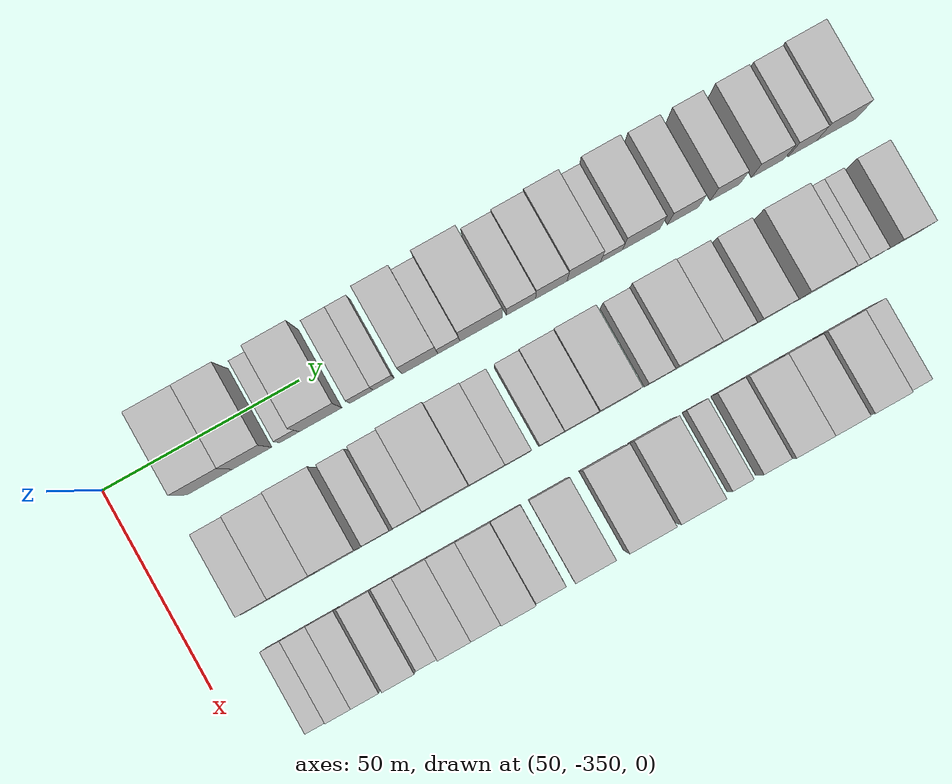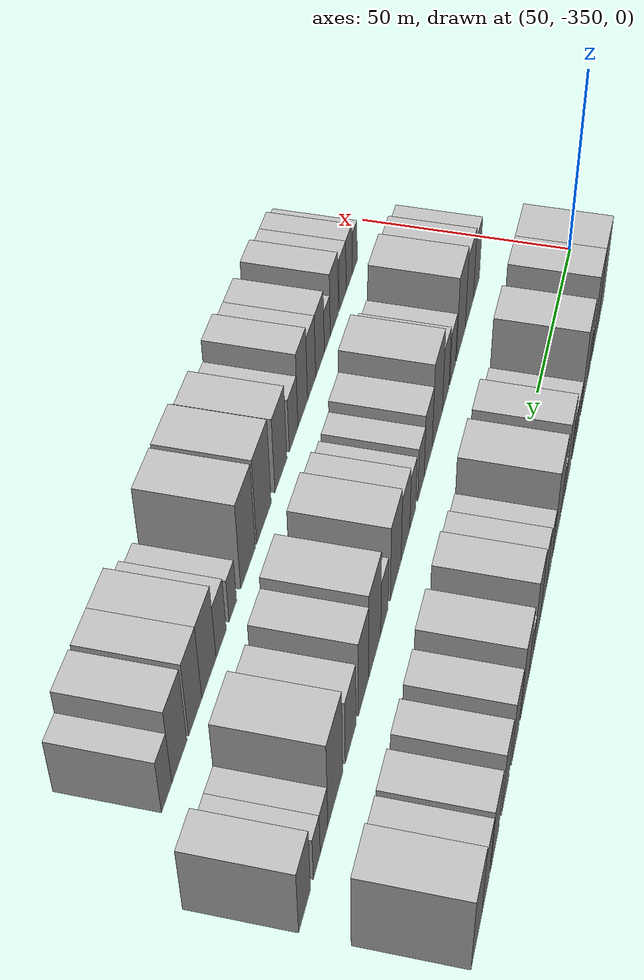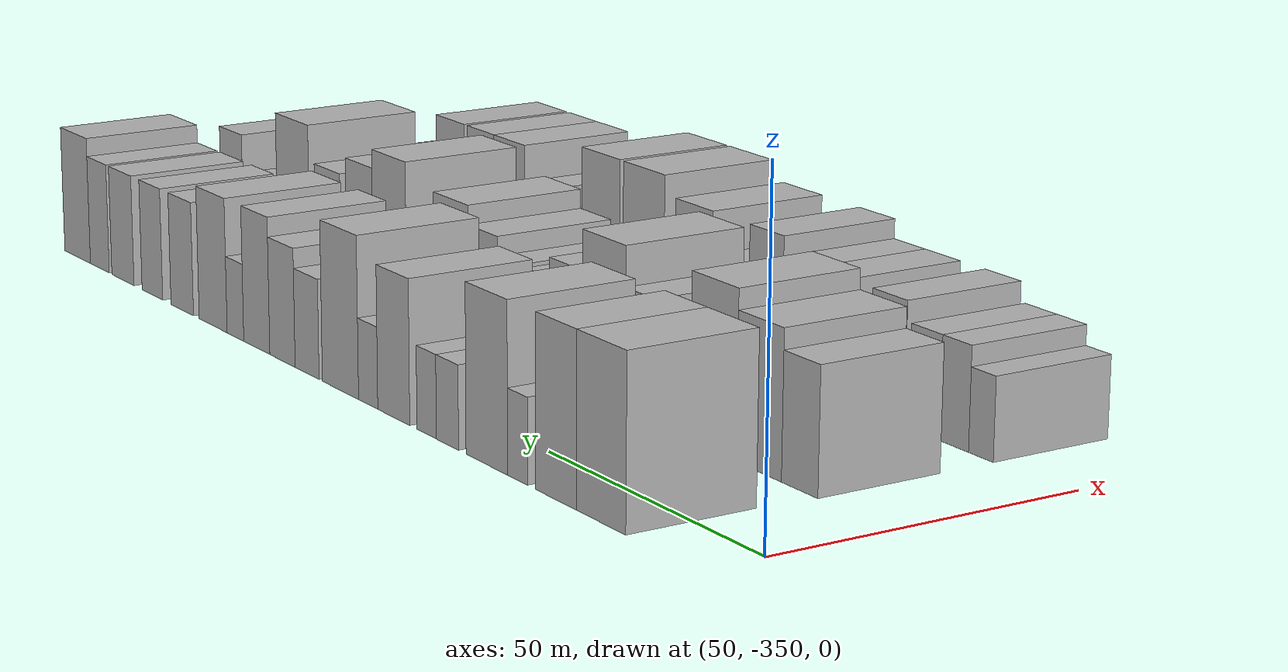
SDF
<sdf version="1.6">
 <world name="default">
  <model name="building_1">
   <static>1</static>
   <pose>50.0000 -328.2224 0 0.000000 0.000000 0.000000</pose>
   <link name="link">
    <pose>0 0 12.00 0 0 0</pose>
    <collision name="collision"><geometry><box><size>20.0000 11.5552 24.0000</size></box></geometry></collision>
    <visual name="visual">
     <cast_shadows>0</cast_shadows>
     <geometry><box><size>20.0000 11.5552 24.0000</size></box></geometry>
     <material>
      <script>
       <uri>model://HANNAS_wall/materials/scripts</uri>
       <uri>model://HANNAS_wall/materials/textures</uri>
       <name>vrc/HANNAS_wall</name>
      </script>
     </material>
    </visual>
   </link>
  </model>
  <model name="building_2">
   <static>1</static>
   <pose>50.0000 -317.5008 0 0.000000 0.000000 0.000000</pose>
   <link name="link">
    <pose>0 0 12.00 0 0 0</pose>
    <collision name="collision"><geometry><box><size>20.0000 9.8880 24.0000</size></box></geometry></collision>
    <visual name="visual">
     <cast_shadows>0</cast_shadows>
     <geometry><box><size>20.0000 9.8880 24.0000</size></box></geometry>
     <material>
      <script>
       <uri>model://HANNAS_wall/materials/scripts</uri>
       <uri>model://HANNAS_wall/materials/textures</uri>
       <name>vrc/HANNAS_wall</name>
      </script>
     </material>
    </visual>
   </link>
  </model>
  <model name="building_3">
   <static>1</static>
   <pose>50.0000 -308.0317 0 0.000000 0.000000 0.000000</pose>
   <link name="link">
    <pose>0 0 6.00 0 0 0</pose>
    <collision name="collision"><geometry><box><size>20.0000 5.0502 12.0000</size></box></geometry></collision>
    <visual name="visual">
     <cast_shadows>0</cast_shadows>
     <geometry><box><size>20.0000 5.0502 12.0000</size></box></geometry>
     <material>
      <script>
       <uri>model://HANNAS_wall/materials/scripts</uri>
       <uri>model://HANNAS_wall/materials/textures</uri>
       <name>vrc/HANNAS_wall</name>
      </script>
     </material>
    </visual>
   </link>
  </model>
  <model name="building_4">
   <static>1</static>
   <pose>50.0000 -300.1355 0 0.000000 0.000000 0.000000</pose>
   <link name="link">
    <pose>0 0 12.00 0 0 0</pose>
    <collision name="collision"><geometry><box><size>20.0000 10.7421 24.0000</size></box></geometry></collision>
    <visual name="visual">
     <cast_shadows>0</cast_shadows>
     <geometry><box><size>20.0000 10.7421 24.0000</size></box></geometry>
     <material>
      <script>
       <uri>model://HANNAS_wall/materials/scripts</uri>
       <uri>model://HANNAS_wall/materials/textures</uri>
       <name>vrc/HANNAS_wall</name>
      </script>
     </material>
    </visual>
   </link>
  </model>
  <model name="building_5">
   <static>1</static>
   <pose>50.0000 -289.7692 0 0.000000 0.000000 0.000000</pose>
   <link name="link">
    <pose>0 0 6.00 0 0 0</pose>
    <collision name="collision"><geometry><box><size>20.0000 5.9904 12.0000</size></box></geometry></collision>
    <visual name="visual">
     <cast_shadows>0</cast_shadows>
     <geometry><box><size>20.0000 5.9904 12.0000</size></box></geometry>
     <material>
      <script>
       <uri>model://HANNAS_wall/materials/scripts</uri>
       <uri>model://HANNAS_wall/materials/textures</uri>
       <name>vrc/HANNAS_wall</name>
      </script>
     </material>
    </visual>
   </link>
  </model>
  <model name="building_6">
   <static>1</static>
   <pose>50.0000 -284.1062 0 0.000000 0.000000 0.000000</pose>
   <link name="link">
    <pose>0 0 6.00 0 0 0</pose>
    <collision name="collision"><geometry><box><size>20.0000 5.3357 12.0000</size></box></geometry></collision>
    <visual name="visual">
     <cast_shadows>0</cast_shadows>
     <geometry><box><size>20.0000 5.3357 12.0000</size></box></geometry>
     <material>
      <script>
       <uri>model://HANNAS_wall/materials/scripts</uri>
       <uri>model://HANNAS_wall/materials/textures</uri>
       <name>vrc/HANNAS_wall</name>
      </script>
     </material>
    </visual>
   </link>
  </model>
  <model name="building_7">
   <static>1</static>
   <pose>50.0000 -274.8928 0 0.000000 0.000000 0.000000</pose>
   <link name="link">
    <pose>0 0 10.50 0 0 0</pose>
    <collision name="collision"><geometry><box><size>20.0000 9.0911 21.0000</size></box></geometry></collision>
    <visual name="visual">
     <cast_shadows>0</cast_shadows>
     <geometry><box><size>20.0000 9.0911 21.0000</size></box></geometry>
     <material>
      <script>
       <uri>model://HANNAS_wall/materials/scripts</uri>
       <uri>model://HANNAS_wall/materials/textures</uri>
       <name>vrc/HANNAS_wall</name>
      </script>
     </material>
    </visual>
   </link>
  </model>
  <model name="building_8">
   <static>1</static>
   <pose>50.0000 -267.5456 0 0.000000 0.000000 0.000000</pose>
   <link name="link">
    <pose>0 0 6.00 0 0 0</pose>
    <collision name="collision"><geometry><box><size>20.0000 5.6033 12.0000</size></box></geometry></collision>
    <visual name="visual">
     <cast_shadows>0</cast_shadows>
     <geometry><box><size>20.0000 5.6033 12.0000</size></box></geometry>
     <material>
      <script>
       <uri>model://HANNAS_wall/materials/scripts</uri>
       <uri>model://HANNAS_wall/materials/textures</uri>
       <name>vrc/HANNAS_wall</name>
      </script>
     </material>
    </visual>
   </link>
  </model>
  <model name="building_9">
   <static>1</static>
   <pose>50.0000 -259.3172 0 0.000000 0.000000 0.000000</pose>
   <link name="link">
    <pose>0 0 12.00 0 0 0</pose>
    <collision name="collision"><geometry><box><size>20.0000 10.8535 24.0000</size></box></geometry></collision>
    <visual name="visual">
     <cast_shadows>0</cast_shadows>
     <geometry><box><size>20.0000 10.8535 24.0000</size></box></geometry>
     <material>
      <script>
       <uri>model://HANNAS_wall/materials/scripts</uri>
       <uri>model://HANNAS_wall/materials/textures</uri>
       <name>vrc/HANNAS_wall</name>
      </script>
     </material>
    </visual>
   </link>
  </model>
  <model name="building_10">
   <static>1</static>
   <pose>50.0000 -249.1697 0 0.000000 0.000000 0.000000</pose>
   <link name="link">
    <pose>0 0 7.50 0 0 0</pose>
    <collision name="collision"><geometry><box><size>20.0000 7.4414 15.0000</size></box></geometry></collision>
    <visual name="visual">
     <cast_shadows>0</cast_shadows>
     <geometry><box><size>20.0000 7.4414 15.0000</size></box></geometry>
     <material>
      <script>
       <uri>model://HANNAS_wall/materials/scripts</uri>
       <uri>model://HANNAS_wall/materials/textures</uri>
       <name>vrc/HANNAS_wall</name>
      </script>
     </material>
    </visual>
   </link>
  </model>
  <model name="building_11">
   <static>1</static>
   <pose>50.0000 -241.4162 0 0.000000 0.000000 0.000000</pose>
   <link name="link">
    <pose>0 0 9.00 0 0 0</pose>
    <collision name="collision"><geometry><box><size>20.0000 8.0657 18.0000</size></box></geometry></collision>
    <visual name="visual">
     <cast_shadows>0</cast_shadows>
     <geometry><box><size>20.0000 8.0657 18.0000</size></box></geometry>
     <material>
      <script>
       <uri>model://HANNAS_wall/materials/scripts</uri>
       <uri>model://HANNAS_wall/materials/textures</uri>
       <name>vrc/HANNAS_wall</name>
      </script>
     </material>
    </visual>
   </link>
  </model>
  <model name="building_12">
   <static>1</static>
   <pose>50.0000 -233.1106 0 0.000000 0.000000 0.000000</pose>
   <link name="link">
    <pose>0 0 10.50 0 0 0</pose>
    <collision name="collision"><geometry><box><size>20.0000 8.5455 21.0000</size></box></geometry></collision>
    <visual name="visual">
     <cast_shadows>0</cast_shadows>
     <geometry><box><size>20.0000 8.5455 21.0000</size></box></geometry>
     <material>
      <script>
       <uri>model://HANNAS_wall/materials/scripts</uri>
       <uri>model://HANNAS_wall/materials/textures</uri>
       <name>vrc/HANNAS_wall</name>
      </script>
     </material>
    </visual>
   </link>
  </model>
  <model name="building_13">
   <static>1</static>
   <pose>50.0000 -226.0542 0 0.000000 0.000000 0.000000</pose>
   <link name="link">
    <pose>0 0 6.00 0 0 0</pose>
    <collision name="collision"><geometry><box><size>20.0000 5.5673 12.0000</size></box></geometry></collision>
    <visual name="visual">
     <cast_shadows>0</cast_shadows>
     <geometry><box><size>20.0000 5.5673 12.0000</size></box></geometry>
     <material>
      <script>
       <uri>model://HANNAS_wall/materials/scripts</uri>
       <uri>model://HANNAS_wall/materials/textures</uri>
       <name>vrc/HANNAS_wall</name>
      </script>
     </material>
    </visual>
   </link>
  </model>
  <model name="building_14">
   <static>1</static>
   <pose>50.0000 -218.4649 0 0.000000 0.000000 0.000000</pose>
   <link name="link">
    <pose>0 0 10.50 0 0 0</pose>
    <collision name="collision"><geometry><box><size>20.0000 9.6113 21.0000</size></box></geometry></collision>
    <visual name="visual">
     <cast_shadows>0</cast_shadows>
     <geometry><box><size>20.0000 9.6113 21.0000</size></box></geometry>
     <material>
      <script>
       <uri>model://HANNAS_wall/materials/scripts</uri>
       <uri>model://HANNAS_wall/materials/textures</uri>
       <name>vrc/HANNAS_wall</name>
      </script>
     </material>
    </visual>
   </link>
  </model>
  <model name="building_15">
   <static>1</static>
   <pose>50.0000 -207.6624 0 0.000000 0.000000 0.000000</pose>
   <link name="link">
    <pose>0 0 9.00 0 0 0</pose>
    <collision name="collision"><geometry><box><size>20.0000 7.9937 18.0000</size></box></geometry></collision>
    <visual name="visual">
     <cast_shadows>0</cast_shadows>
     <geometry><box><size>20.0000 7.9937 18.0000</size></box></geometry>
     <material>
      <script>
       <uri>model://HANNAS_wall/materials/scripts</uri>
       <uri>model://HANNAS_wall/materials/textures</uri>
       <name>vrc/HANNAS_wall</name>
      </script>
     </material>
    </visual>
   </link>
  </model>
  <model name="building_16">
   <static>1</static>
   <pose>50.0000 -196.8680 0 0.000000 0.000000 0.000000</pose>
   <link name="link">
    <pose>0 0 9.00 0 0 0</pose>
    <collision name="collision"><geometry><box><size>20.0000 7.5952 18.0000</size></box></geometry></collision>
    <visual name="visual">
     <cast_shadows>0</cast_shadows>
     <geometry><box><size>20.0000 7.5952 18.0000</size></box></geometry>
     <material>
      <script>
       <uri>model://HANNAS_wall/materials/scripts</uri>
       <uri>model://HANNAS_wall/materials/textures</uri>
       <name>vrc/HANNAS_wall</name>
      </script>
     </material>
    </visual>
   </link>
  </model>
  <model name="building_17">
   <static>1</static>
   <pose>50.0000 -185.8520 0 0.000000 0.000000 0.000000</pose>
   <link name="link">
    <pose>0 0 9.00 0 0 0</pose>
    <collision name="collision"><geometry><box><size>20.0000 8.4368 18.0000</size></box></geometry></collision>
    <visual name="visual">
     <cast_shadows>0</cast_shadows>
     <geometry><box><size>20.0000 8.4368 18.0000</size></box></geometry>
     <material>
      <script>
       <uri>model://HANNAS_wall/materials/scripts</uri>
       <uri>model://HANNAS_wall/materials/textures</uri>
       <name>vrc/HANNAS_wall</name>
      </script>
     </material>
    </visual>
   </link>
  </model>
  <model name="building_18">
   <static>1</static>
   <pose>50.0000 -176.9500 0 0.000000 0.000000 0.000000</pose>
   <link name="link">
    <pose>0 0 9.00 0 0 0</pose>
    <collision name="collision"><geometry><box><size>20.0000 7.3672 18.0000</size></box></geometry></collision>
    <visual name="visual">
     <cast_shadows>0</cast_shadows>
     <geometry><box><size>20.0000 7.3672 18.0000</size></box></geometry>
     <material>
      <script>
       <uri>model://HANNAS_wall/materials/scripts</uri>
       <uri>model://HANNAS_wall/materials/textures</uri>
       <name>vrc/HANNAS_wall</name>
      </script>
     </material>
    </visual>
   </link>
  </model>
  <model name="building_19">
   <static>1</static>
   <pose>50.0000 -168.1503 0 0.000000 0.000000 0.000000</pose>
   <link name="link">
    <pose>0 0 10.50 0 0 0</pose>
    <collision name="collision"><geometry><box><size>20.0000 10.2322 21.0000</size></box></geometry></collision>
    <visual name="visual">
     <cast_shadows>0</cast_shadows>
     <geometry><box><size>20.0000 10.2322 21.0000</size></box></geometry>
     <material>
      <script>
       <uri>model://HANNAS_wall/materials/scripts</uri>
       <uri>model://HANNAS_wall/materials/textures</uri>
       <name>vrc/HANNAS_wall</name>
      </script>
     </material>
    </visual>
   </link>
  </model>
  <model name="building_77">
   <static>1</static>
   <pose>79.0000 -330.9791 0 0.000000 0.000000 0.000000</pose>
   <link name="link">
    <pose>0 0 9.00 0 0 0</pose>
    <collision name="collision"><geometry><box><size>20.0000 8.0417 18.0000</size></box></geometry></collision>
    <visual name="visual">
     <cast_shadows>0</cast_shadows>
     <geometry><box><size>20.0000 8.0417 18.0000</size></box></geometry>
     <material>
      <script>
       <uri>model://HANNAS_wall/materials/scripts</uri>
       <uri>model://HANNAS_wall/materials/textures</uri>
       <name>vrc/HANNAS_wall</name>
      </script>
     </material>
    </visual>
   </link>
  </model>
  <model name="building_78">
   <static>1</static>
   <pose>79.0000 -321.8254 0 0.000000 0.000000 0.000000</pose>
   <link name="link">
    <pose>0 0 10.50 0 0 0</pose>
    <collision name="collision"><geometry><box><size>20.0000 10.2656 21.0000</size></box></geometry></collision>
    <visual name="visual">
     <cast_shadows>0</cast_shadows>
     <geometry><box><size>20.0000 10.2656 21.0000</size></box></geometry>
     <material>
      <script>
       <uri>model://HANNAS_wall/materials/scripts</uri>
       <uri>model://HANNAS_wall/materials/textures</uri>
       <name>vrc/HANNAS_wall</name>
      </script>
     </material>
    </visual>
   </link>
  </model>
  <model name="building_79">
   <static>1</static>
   <pose>79.0000 -311.2287 0 0.000000 0.000000 0.000000</pose>
   <link name="link">
    <pose>0 0 12.00 0 0 0</pose>
    <collision name="collision"><geometry><box><size>20.0000 10.9279 24.0000</size></box></geometry></collision>
    <visual name="visual">
     <cast_shadows>0</cast_shadows>
     <geometry><box><size>20.0000 10.9279 24.0000</size></box></geometry>
     <material>
      <script>
       <uri>model://HANNAS_wall/materials/scripts</uri>
       <uri>model://HANNAS_wall/materials/textures</uri>
       <name>vrc/HANNAS_wall</name>
      </script>
     </material>
    </visual>
   </link>
  </model>
  <model name="building_80">
   <static>1</static>
   <pose>79.0000 -301.3405 0 0.000000 0.000000 0.000000</pose>
   <link name="link">
    <pose>0 0 7.50 0 0 0</pose>
    <collision name="collision"><geometry><box><size>20.0000 6.8485 15.0000</size></box></geometry></collision>
    <visual name="visual">
     <cast_shadows>0</cast_shadows>
     <geometry><box><size>20.0000 6.8485 15.0000</size></box></geometry>
     <material>
      <script>
       <uri>model://HANNAS_wall/materials/scripts</uri>
       <uri>model://HANNAS_wall/materials/textures</uri>
       <name>vrc/HANNAS_wall</name>
      </script>
     </material>
    </visual>
   </link>
  </model>
  <model name="building_81">
   <static>1</static>
   <pose>79.0000 -293.2056 0 0.000000 0.000000 0.000000</pose>
   <link name="link">
    <pose>0 0 9.00 0 0 0</pose>
    <collision name="collision"><geometry><box><size>20.0000 7.4212 18.0000</size></box></geometry></collision>
    <visual name="visual">
     <cast_shadows>0</cast_shadows>
     <geometry><box><size>20.0000 7.4212 18.0000</size></box></geometry>
     <material>
      <script>
       <uri>model://HANNAS_wall/materials/scripts</uri>
       <uri>model://HANNAS_wall/materials/textures</uri>
       <name>vrc/HANNAS_wall</name>
      </script>
     </material>
    </visual>
   </link>
  </model>
  <model name="building_82">
   <static>1</static>
   <pose>79.0000 -283.8848 0 0.000000 0.000000 0.000000</pose>
   <link name="link">
    <pose>0 0 12.00 0 0 0</pose>
    <collision name="collision"><geometry><box><size>20.0000 11.2203 24.0000</size></box></geometry></collision>
    <visual name="visual">
     <cast_shadows>0</cast_shadows>
     <geometry><box><size>20.0000 11.2203 24.0000</size></box></geometry>
     <material>
      <script>
       <uri>model://HANNAS_wall/materials/scripts</uri>
       <uri>model://HANNAS_wall/materials/textures</uri>
       <name>vrc/HANNAS_wall</name>
      </script>
     </material>
    </visual>
   </link>
  </model>
  <model name="building_83">
   <static>1</static>
   <pose>79.0000 -273.8857 0 0.000000 0.000000 0.000000</pose>
   <link name="link">
    <pose>0 0 9.00 0 0 0</pose>
    <collision name="collision"><geometry><box><size>20.0000 8.7779 18.0000</size></box></geometry></collision>
    <visual name="visual">
     <cast_shadows>0</cast_shadows>
     <geometry><box><size>20.0000 8.7779 18.0000</size></box></geometry>
     <material>
      <script>
       <uri>model://HANNAS_wall/materials/scripts</uri>
       <uri>model://HANNAS_wall/materials/textures</uri>
       <name>vrc/HANNAS_wall</name>
      </script>
     </material>
    </visual>
   </link>
  </model>
  <model name="building_84">
   <static>1</static>
   <pose>79.0000 -266.2394 0 0.000000 0.000000 0.000000</pose>
   <link name="link">
    <pose>0 0 7.50 0 0 0</pose>
    <collision name="collision"><geometry><box><size>20.0000 6.5146 15.0000</size></box></geometry></collision>
    <visual name="visual">
     <cast_shadows>0</cast_shadows>
     <geometry><box><size>20.0000 6.5146 15.0000</size></box></geometry>
     <material>
      <script>
       <uri>model://HANNAS_wall/materials/scripts</uri>
       <uri>model://HANNAS_wall/materials/textures</uri>
       <name>vrc/HANNAS_wall</name>
      </script>
     </material>
    </visual>
   </link>
  </model>
  <model name="building_85">
   <static>1</static>
   <pose>79.0000 -257.9208 0 0.000000 0.000000 0.000000</pose>
   <link name="link">
    <pose>0 0 7.50 0 0 0</pose>
    <collision name="collision"><geometry><box><size>20.0000 6.1226 15.0000</size></box></geometry></collision>
    <visual name="visual">
     <cast_shadows>0</cast_shadows>
     <geometry><box><size>20.0000 6.1226 15.0000</size></box></geometry>
     <material>
      <script>
       <uri>model://HANNAS_wall/materials/scripts</uri>
       <uri>model://HANNAS_wall/materials/textures</uri>
       <name>vrc/HANNAS_wall</name>
      </script>
     </material>
    </visual>
   </link>
  </model>
  <model name="building_86">
   <static>1</static>
   <pose>79.0000 -250.6059 0 0.000000 0.000000 0.000000</pose>
   <link name="link">
    <pose>0 0 9.00 0 0 0</pose>
    <collision name="collision"><geometry><box><size>20.0000 8.5072 18.0000</size></box></geometry></collision>
    <visual name="visual">
     <cast_shadows>0</cast_shadows>
     <geometry><box><size>20.0000 8.5072 18.0000</size></box></geometry>
     <material>
      <script>
       <uri>model://HANNAS_wall/materials/scripts</uri>
       <uri>model://HANNAS_wall/materials/textures</uri>
       <name>vrc/HANNAS_wall</name>
      </script>
     </material>
    </visual>
   </link>
  </model>
  <model name="building_87">
   <static>1</static>
   <pose>79.0000 -241.1945 0 0.000000 0.000000 0.000000</pose>
   <link name="link">
    <pose>0 0 10.50 0 0 0</pose>
    <collision name="collision"><geometry><box><size>20.0000 10.3157 21.0000</size></box></geometry></collision>
    <visual name="visual">
     <cast_shadows>0</cast_shadows>
     <geometry><box><size>20.0000 10.3157 21.0000</size></box></geometry>
     <material>
      <script>
       <uri>model://HANNAS_wall/materials/scripts</uri>
       <uri>model://HANNAS_wall/materials/textures</uri>
       <name>vrc/HANNAS_wall</name>
      </script>
     </material>
    </visual>
   </link>
  </model>
  <model name="building_88">
   <static>1</static>
   <pose>79.0000 -230.7562 0 0.000000 0.000000 0.000000</pose>
   <link name="link">
    <pose>0 0 7.50 0 0 0</pose>
    <collision name="collision"><geometry><box><size>20.0000 6.5608 15.0000</size></box></geometry></collision>
    <visual name="visual">
     <cast_shadows>0</cast_shadows>
     <geometry><box><size>20.0000 6.5608 15.0000</size></box></geometry>
     <material>
      <script>
       <uri>model://HANNAS_wall/materials/scripts</uri>
       <uri>model://HANNAS_wall/materials/textures</uri>
       <name>vrc/HANNAS_wall</name>
      </script>
     </material>
    </visual>
   </link>
  </model>
  <model name="building_89">
   <static>1</static>
   <pose>79.0000 -222.1416 0 0.000000 0.000000 0.000000</pose>
   <link name="link">
    <pose>0 0 12.00 0 0 0</pose>
    <collision name="collision"><geometry><box><size>20.0000 10.6684 24.0000</size></box></geometry></collision>
    <visual name="visual">
     <cast_shadows>0</cast_shadows>
     <geometry><box><size>20.0000 10.6684 24.0000</size></box></geometry>
     <material>
      <script>
       <uri>model://HANNAS_wall/materials/scripts</uri>
       <uri>model://HANNAS_wall/materials/textures</uri>
       <name>vrc/HANNAS_wall</name>
      </script>
     </material>
    </visual>
   </link>
  </model>
  <model name="building_90">
   <static>1</static>
   <pose>79.0000 -212.4891 0 0.000000 0.000000 0.000000</pose>
   <link name="link">
    <pose>0 0 10.50 0 0 0</pose>
    <collision name="collision"><geometry><box><size>20.0000 8.6366 21.0000</size></box></geometry></collision>
    <visual name="visual">
     <cast_shadows>0</cast_shadows>
     <geometry><box><size>20.0000 8.6366 21.0000</size></box></geometry>
     <material>
      <script>
       <uri>model://HANNAS_wall/materials/scripts</uri>
       <uri>model://HANNAS_wall/materials/textures</uri>
       <name>vrc/HANNAS_wall</name>
      </script>
     </material>
    </visual>
   </link>
  </model>
  <model name="building_91">
   <static>1</static>
   <pose>79.0000 -201.8551 0 0.000000 0.000000 0.000000</pose>
   <link name="link">
    <pose>0 0 9.00 0 0 0</pose>
    <collision name="collision"><geometry><box><size>20.0000 8.6316 18.0000</size></box></geometry></collision>
    <visual name="visual">
     <cast_shadows>0</cast_shadows>
     <geometry><box><size>20.0000 8.6316 18.0000</size></box></geometry>
     <material>
      <script>
       <uri>model://HANNAS_wall/materials/scripts</uri>
       <uri>model://HANNAS_wall/materials/textures</uri>
       <name>vrc/HANNAS_wall</name>
      </script>
     </material>
    </visual>
   </link>
  </model>
  <model name="building_92">
   <static>1</static>
   <pose>79.0000 -189.8855 0 0.000000 0.000000 0.000000</pose>
   <link name="link">
    <pose>0 0 12.00 0 0 0</pose>
    <collision name="collision"><geometry><box><size>20.0000 11.3077 24.0000</size></box></geometry></collision>
    <visual name="visual">
     <cast_shadows>0</cast_shadows>
     <geometry><box><size>20.0000 11.3077 24.0000</size></box></geometry>
     <material>
      <script>
       <uri>model://HANNAS_wall/materials/scripts</uri>
       <uri>model://HANNAS_wall/materials/textures</uri>
       <name>vrc/HANNAS_wall</name>
      </script>
     </material>
    </visual>
   </link>
  </model>
  <model name="building_93">
   <static>1</static>
   <pose>79.0000 -181.4176 0 0.000000 0.000000 0.000000</pose>
   <link name="link">
    <pose>0 0 6.00 0 0 0</pose>
    <collision name="collision"><geometry><box><size>20.0000 5.6279 12.0000</size></box></geometry></collision>
    <visual name="visual">
     <cast_shadows>0</cast_shadows>
     <geometry><box><size>20.0000 5.6279 12.0000</size></box></geometry>
     <material>
      <script>
       <uri>model://HANNAS_wall/materials/scripts</uri>
       <uri>model://HANNAS_wall/materials/textures</uri>
       <name>vrc/HANNAS_wall</name>
      </script>
     </material>
    </visual>
   </link>
  </model>
  <model name="building_94">
   <static>1</static>
   <pose>79.0000 -176.1201 0 0.000000 0.000000 0.000000</pose>
   <link name="link">
    <pose>0 0 6.00 0 0 0</pose>
    <collision name="collision"><geometry><box><size>20.0000 4.9671 12.0000</size></box></geometry></collision>
    <visual name="visual">
     <cast_shadows>0</cast_shadows>
     <geometry><box><size>20.0000 4.9671 12.0000</size></box></geometry>
     <material>
      <script>
       <uri>model://HANNAS_wall/materials/scripts</uri>
       <uri>model://HANNAS_wall/materials/textures</uri>
       <name>vrc/HANNAS_wall</name>
      </script>
     </material>
    </visual>
   </link>
  </model>
  <model name="building_95">
   <static>1</static>
   <pose>79.0000 -167.5046 0 0.000000 0.000000 0.000000</pose>
   <link name="link">
    <pose>0 0 9.00 0 0 0</pose>
    <collision name="collision"><geometry><box><size>20.0000 8.2639 18.0000</size></box></geometry></collision>
    <visual name="visual">
     <cast_shadows>0</cast_shadows>
     <geometry><box><size>20.0000 8.2639 18.0000</size></box></geometry>
     <material>
      <script>
       <uri>model://HANNAS_wall/materials/scripts</uri>
       <uri>model://HANNAS_wall/materials/textures</uri>
       <name>vrc/HANNAS_wall</name>
      </script>
     </material>
    </visual>
   </link>
  </model>
  <model name="building_152">
   <static>1</static>
   <pose>108.0000 -332.3818 0 0.000000 0.000000 0.000000</pose>
   <link name="link">
    <pose>0 0 6.00 0 0 0</pose>
    <collision name="collision"><geometry><box><size>20.0000 5.2363 12.0000</size></box></geometry></collision>
    <visual name="visual">
     <cast_shadows>0</cast_shadows>
     <geometry><box><size>20.0000 5.2363 12.0000</size></box></geometry>
     <material>
      <script>
       <uri>model://HANNAS_wall/materials/scripts</uri>
       <uri>model://HANNAS_wall/materials/textures</uri>
       <name>vrc/HANNAS_wall</name>
      </script>
     </material>
    </visual>
   </link>
  </model>
  <model name="building_153">
   <static>1</static>
   <pose>108.0000 -326.6491 0 0.000000 0.000000 0.000000</pose>
   <link name="link">
    <pose>0 0 7.50 0 0 0</pose>
    <collision name="collision"><geometry><box><size>20.0000 6.2292 15.0000</size></box></geometry></collision>
    <visual name="visual">
     <cast_shadows>0</cast_shadows>
     <geometry><box><size>20.0000 6.2292 15.0000</size></box></geometry>
     <material>
      <script>
       <uri>model://HANNAS_wall/materials/scripts</uri>
       <uri>model://HANNAS_wall/materials/textures</uri>
       <name>vrc/HANNAS_wall</name>
      </script>
     </material>
    </visual>
   </link>
  </model>
  <model name="building_154">
   <static>1</static>
   <pose>108.0000 -320.1113 0 0.000000 0.000000 0.000000</pose>
   <link name="link">
    <pose>0 0 7.50 0 0 0</pose>
    <collision name="collision"><geometry><box><size>20.0000 6.8463 15.0000</size></box></geometry></collision>
    <visual name="visual">
     <cast_shadows>0</cast_shadows>
     <geometry><box><size>20.0000 6.8463 15.0000</size></box></geometry>
     <material>
      <script>
       <uri>model://HANNAS_wall/materials/scripts</uri>
       <uri>model://HANNAS_wall/materials/textures</uri>
       <name>vrc/HANNAS_wall</name>
      </script>
     </material>
    </visual>
   </link>
  </model>
  <model name="building_155">
   <static>1</static>
   <pose>108.0000 -311.7636 0 0.000000 0.000000 0.000000</pose>
   <link name="link">
    <pose>0 0 9.00 0 0 0</pose>
    <collision name="collision"><geometry><box><size>20.0000 7.8493 18.0000</size></box></geometry></collision>
    <visual name="visual">
     <cast_shadows>0</cast_shadows>
     <geometry><box><size>20.0000 7.8493 18.0000</size></box></geometry>
     <material>
      <script>
       <uri>model://HANNAS_wall/materials/scripts</uri>
       <uri>model://HANNAS_wall/materials/textures</uri>
       <name>vrc/HANNAS_wall</name>
      </script>
     </material>
    </visual>
   </link>
  </model>
  <model name="building_156">
   <static>1</static>
   <pose>108.0000 -305.0411 0 0.000000 0.000000 0.000000</pose>
   <link name="link">
    <pose>0 0 6.00 0 0 0</pose>
    <collision name="collision"><geometry><box><size>20.0000 5.5956 12.0000</size></box></geometry></collision>
    <visual name="visual">
     <cast_shadows>0</cast_shadows>
     <geometry><box><size>20.0000 5.5956 12.0000</size></box></geometry>
     <material>
      <script>
       <uri>model://HANNAS_wall/materials/scripts</uri>
       <uri>model://HANNAS_wall/materials/textures</uri>
       <name>vrc/HANNAS_wall</name>
      </script>
     </material>
    </visual>
   </link>
  </model>
  <model name="building_157">
   <static>1</static>
   <pose>108.0000 -298.1847 0 0.000000 0.000000 0.000000</pose>
   <link name="link">
    <pose>0 0 9.00 0 0 0</pose>
    <collision name="collision"><geometry><box><size>20.0000 8.1172 18.0000</size></box></geometry></collision>
    <visual name="visual">
     <cast_shadows>0</cast_shadows>
     <geometry><box><size>20.0000 8.1172 18.0000</size></box></geometry>
     <material>
      <script>
       <uri>model://HANNAS_wall/materials/scripts</uri>
       <uri>model://HANNAS_wall/materials/textures</uri>
       <name>vrc/HANNAS_wall</name>
      </script>
     </material>
    </visual>
   </link>
  </model>
  <model name="building_158">
   <static>1</static>
   <pose>108.0000 -290.4383 0 0.000000 0.000000 0.000000</pose>
   <link name="link">
    <pose>0 0 9.00 0 0 0</pose>
    <collision name="collision"><geometry><box><size>20.0000 7.3756 18.0000</size></box></geometry></collision>
    <visual name="visual">
     <cast_shadows>0</cast_shadows>
     <geometry><box><size>20.0000 7.3756 18.0000</size></box></geometry>
     <material>
      <script>
       <uri>model://HANNAS_wall/materials/scripts</uri>
       <uri>model://HANNAS_wall/materials/textures</uri>
       <name>vrc/HANNAS_wall</name>
      </script>
     </material>
    </visual>
   </link>
  </model>
  <model name="building_159">
   <static>1</static>
   <pose>108.0000 -282.5091 0 0.000000 0.000000 0.000000</pose>
   <link name="link">
    <pose>0 0 10.50 0 0 0</pose>
    <collision name="collision"><geometry><box><size>20.0000 8.4830 21.0000</size></box></geometry></collision>
    <visual name="visual">
     <cast_shadows>0</cast_shadows>
     <geometry><box><size>20.0000 8.4830 21.0000</size></box></geometry>
     <material>
      <script>
       <uri>model://HANNAS_wall/materials/scripts</uri>
       <uri>model://HANNAS_wall/materials/textures</uri>
       <name>vrc/HANNAS_wall</name>
      </script>
     </material>
    </visual>
   </link>
  </model>
  <model name="building_160">
   <static>1</static>
   <pose>108.0000 -274.5389 0 0.000000 0.000000 0.000000</pose>
   <link name="link">
    <pose>0 0 7.50 0 0 0</pose>
    <collision name="collision"><geometry><box><size>20.0000 7.4573 15.0000</size></box></geometry></collision>
    <visual name="visual">
     <cast_shadows>0</cast_shadows>
     <geometry><box><size>20.0000 7.4573 15.0000</size></box></geometry>
     <material>
      <script>
       <uri>model://HANNAS_wall/materials/scripts</uri>
       <uri>model://HANNAS_wall/materials/textures</uri>
       <name>vrc/HANNAS_wall</name>
      </script>
     </material>
    </visual>
   </link>
  </model>
  <model name="building_161">
   <static>1</static>
   <pose>108.0000 -263.8609 0 0.000000 0.000000 0.000000</pose>
   <link name="link">
    <pose>0 0 10.50 0 0 0</pose>
    <collision name="collision"><geometry><box><size>20.0000 9.8988 21.0000</size></box></geometry></collision>
    <visual name="visual">
     <cast_shadows>0</cast_shadows>
     <geometry><box><size>20.0000 9.8988 21.0000</size></box></geometry>
     <material>
      <script>
       <uri>model://HANNAS_wall/materials/scripts</uri>
       <uri>model://HANNAS_wall/materials/textures</uri>
       <name>vrc/HANNAS_wall</name>
      </script>
     </material>
    </visual>
   </link>
  </model>
  <model name="building_162">
   <static>1</static>
   <pose>108.0000 -250.2066 0 0.000000 0.000000 0.000000</pose>
   <link name="link">
    <pose>0 0 12.00 0 0 0</pose>
    <collision name="collision"><geometry><box><size>20.0000 11.4098 24.0000</size></box></geometry></collision>
    <visual name="visual">
     <cast_shadows>0</cast_shadows>
     <geometry><box><size>20.0000 11.4098 24.0000</size></box></geometry>
     <material>
      <script>
       <uri>model://HANNAS_wall/materials/scripts</uri>
       <uri>model://HANNAS_wall/materials/textures</uri>
       <name>vrc/HANNAS_wall</name>
      </script>
     </material>
    </visual>
   </link>
  </model>
  <model name="building_163">
   <static>1</static>
   <pose>108.0000 -238.0403 0 0.000000 0.000000 0.000000</pose>
   <link name="link">
    <pose>0 0 12.00 0 0 0</pose>
    <collision name="collision"><geometry><box><size>20.0000 10.9227 24.0000</size></box></geometry></collision>
    <visual name="visual">
     <cast_shadows>0</cast_shadows>
     <geometry><box><size>20.0000 10.9227 24.0000</size></box></geometry>
     <material>
      <script>
       <uri>model://HANNAS_wall/materials/scripts</uri>
       <uri>model://HANNAS_wall/materials/textures</uri>
       <name>vrc/HANNAS_wall</name>
      </script>
     </material>
    </visual>
   </link>
  </model>
  <model name="building_164">
   <static>1</static>
   <pose>108.0000 -226.9149 0 0.000000 0.000000 0.000000</pose>
   <link name="link">
    <pose>0 0 6.00 0 0 0</pose>
    <collision name="collision"><geometry><box><size>20.0000 5.3281 12.0000</size></box></geometry></collision>
    <visual name="visual">
     <cast_shadows>0</cast_shadows>
     <geometry><box><size>20.0000 5.3281 12.0000</size></box></geometry>
     <material>
      <script>
       <uri>model://HANNAS_wall/materials/scripts</uri>
       <uri>model://HANNAS_wall/materials/textures</uri>
       <name>vrc/HANNAS_wall</name>
      </script>
     </material>
    </visual>
   </link>
  </model>
  <model name="building_165">
   <static>1</static>
   <pose>108.0000 -218.7602 0 0.000000 0.000000 0.000000</pose>
   <link name="link">
    <pose>0 0 7.50 0 0 0</pose>
    <collision name="collision"><geometry><box><size>20.0000 6.9812 15.0000</size></box></geometry></collision>
    <visual name="visual">
     <cast_shadows>0</cast_shadows>
     <geometry><box><size>20.0000 6.9812 15.0000</size></box></geometry>
     <material>
      <script>
       <uri>model://HANNAS_wall/materials/scripts</uri>
       <uri>model://HANNAS_wall/materials/textures</uri>
       <name>vrc/HANNAS_wall</name>
      </script>
     </material>
    </visual>
   </link>
  </model>
  <model name="building_166">
   <static>1</static>
   <pose>108.0000 -210.4960 0 0.000000 0.000000 0.000000</pose>
   <link name="link">
    <pose>0 0 10.50 0 0 0</pose>
    <collision name="collision"><geometry><box><size>20.0000 9.5470 21.0000</size></box></geometry></collision>
    <visual name="visual">
     <cast_shadows>0</cast_shadows>
     <geometry><box><size>20.0000 9.5470 21.0000</size></box></geometry>
     <material>
      <script>
       <uri>model://HANNAS_wall/materials/scripts</uri>
       <uri>model://HANNAS_wall/materials/textures</uri>
       <name>vrc/HANNAS_wall</name>
      </script>
     </material>
    </visual>
   </link>
  </model>
  <model name="building_167">
   <static>1</static>
   <pose>108.0000 -201.4382 0 0.000000 0.000000 0.000000</pose>
   <link name="link">
    <pose>0 0 10.50 0 0 0</pose>
    <collision name="collision"><geometry><box><size>20.0000 8.5687 21.0000</size></box></geometry></collision>
    <visual name="visual">
     <cast_shadows>0</cast_shadows>
     <geometry><box><size>20.0000 8.5687 21.0000</size></box></geometry>
     <material>
      <script>
       <uri>model://HANNAS_wall/materials/scripts</uri>
       <uri>model://HANNAS_wall/materials/textures</uri>
       <name>vrc/HANNAS_wall</name>
      </script>
     </material>
    </visual>
   </link>
  </model>
  <model name="building_168">
   <static>1</static>
   <pose>108.0000 -191.5086 0 0.000000 0.000000 0.000000</pose>
   <link name="link">
    <pose>0 0 10.50 0 0 0</pose>
    <collision name="collision"><geometry><box><size>20.0000 9.2904 21.0000</size></box></geometry></collision>
    <visual name="visual">
     <cast_shadows>0</cast_shadows>
     <geometry><box><size>20.0000 9.2904 21.0000</size></box></geometry>
     <material>
      <script>
       <uri>model://HANNAS_wall/materials/scripts</uri>
       <uri>model://HANNAS_wall/materials/textures</uri>
       <name>vrc/HANNAS_wall</name>
      </script>
     </material>
    </visual>
   </link>
  </model>
  <model name="building_169">
   <static>1</static>
   <pose>108.0000 -183.7386 0 0.000000 0.000000 0.000000</pose>
   <link name="link">
    <pose>0 0 7.50 0 0 0</pose>
    <collision name="collision"><geometry><box><size>20.0000 6.2496 15.0000</size></box></geometry></collision>
    <visual name="visual">
     <cast_shadows>0</cast_shadows>
     <geometry><box><size>20.0000 6.2496 15.0000</size></box></geometry>
     <material>
      <script>
       <uri>model://HANNAS_wall/materials/scripts</uri>
       <uri>model://HANNAS_wall/materials/textures</uri>
       <name>vrc/HANNAS_wall</name>
      </script>
     </material>
    </visual>
   </link>
  </model>
 </world>
</sdf>
